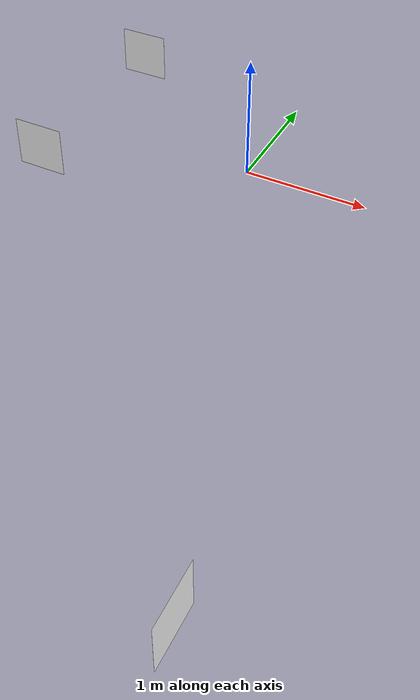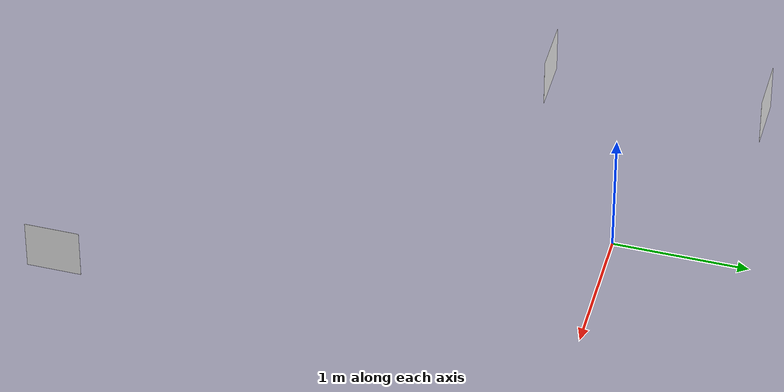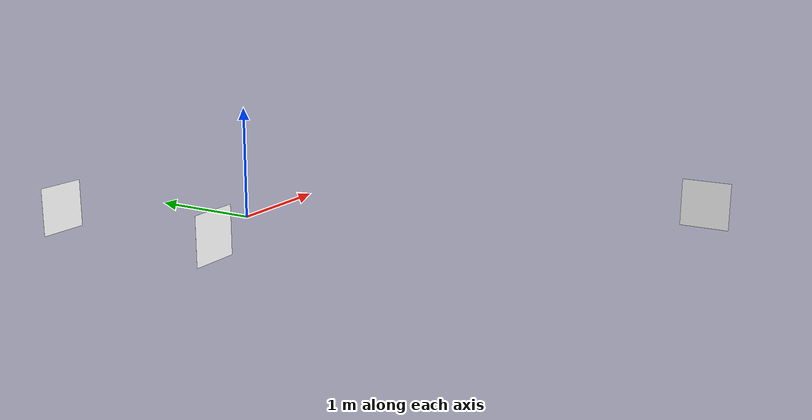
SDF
<?xml version="1.0" ?>
<sdf version="1.7">
<model name="aruco_base">
    <!-- ARUCO 3 -->
    <model name="aruco_3">
      <static>true</static>
      <pose>1.39 -3.75  0.3 1.5708 0 0</pose>
      <link name="link">
        <visual name="visual">
          <geometry>
            <plane><normal>-1 0 0</normal><size>0.4 0.4</size></plane>
          </geometry>
          <material>
            <diffuse>1 1 1 1</diffuse>
              <pbr>
                <metal>
                <albedo_map>package://jackal_helper/materials/4x4_1000-3.png</albedo_map>
                </metal>
              </pbr>
          </material>
        </visual>
      </link>
    </model>

    <!-- ARUCO 4 -->
    <model name="aruco_4">
      <static>true</static>
      <pose>-1.40 -0.81 0.3 0 0 0</pose>
      <link name="link">
        <visual name="visual">
          <geometry>
            <plane><normal>0 -1 0</normal><size>0.4 0.4</size></plane>
          </geometry>
          <material>
            <diffuse>1 1 1 1</diffuse>
              <pbr>
                <metal>
                <albedo_map>package://jackal_helper/materials/4x4_1000-4.png</albedo_map>
                </metal>
              </pbr>
          </material>
        </visual>
      </link>
    </model>

    <!-- ARUCO 5 -->
    <model name="aruco_5">
      <static>true</static>
      <pose>-1.40 0.81 0.3 0 -3.1415 0</pose>
      <link name="link">
        <visual name="visual">
          <geometry>
            <plane><normal>0 1 0</normal><size>0.4 0.4</size></plane>
          </geometry>
          <material>
            <diffuse>1 1 1 1</diffuse>
              <pbr>
                <metal>
                <albedo_map>package://jackal_helper/materials/4x4_1000-5.png</albedo_map>
                </metal>
              </pbr>
          </material>
        </visual>
      </link>
    </model>
</model>
</sdf>
